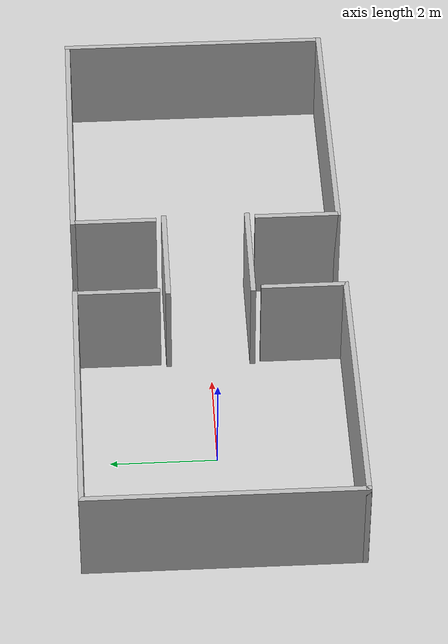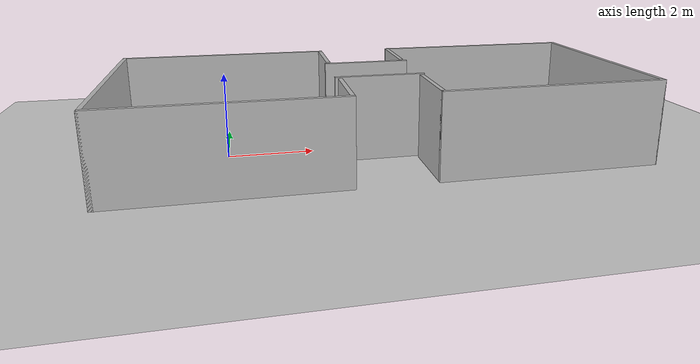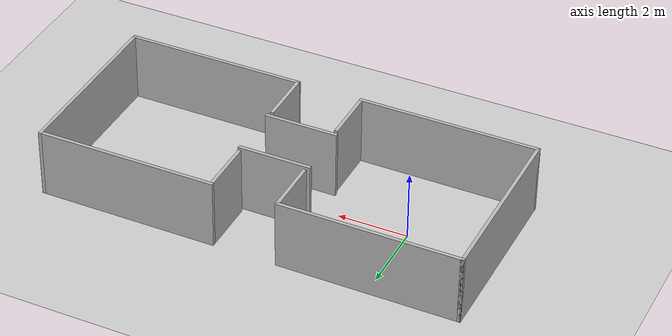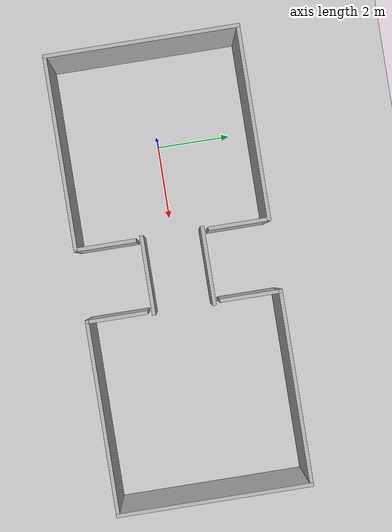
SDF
<?xml version="1.0" ?>
<sdf version="1.8">
  <world name="two_rooms_hallway">
    <physics name="1ms" type="ignored">
      <max_step_size>0.001</max_step_size>
      <real_time_factor>1.0</real_time_factor>
    </physics>
    <plugin filename="gz-sim-physics-system" name="gz::sim::systems::Physics"></plugin>
    <plugin filename="gz-sim-user-commands-system" name="gz::sim::systems::UserCommands"></plugin>
    <plugin filename="gz-sim-scene-broadcaster-system" name="gz::sim::systems::SceneBroadcaster"></plugin>
    <plugin filename="gz-sim-sensors-system" name="gz::sim::systems::Sensors">
        <render_engine>ogre2</render_engine>
    </plugin>

    <!-- Sun Light -->
    <light type="directional" name="sun">
      <cast_shadows>true</cast_shadows>
      <pose>0 0 10 0 0 0</pose>
      <diffuse>0.8 0.8 0.8 1</diffuse>
      <specular>0.2 0.2 0.2 1</specular>
      <direction>-0.5 0.1 -0.9</direction>
    </light>

    <!-- Ground Plane -->
    <model name="ground_plane">
      <static>true</static>
      <link name="link">
        <collision name="collision">
          <geometry><plane><normal>0 0 1</normal><size>100 100</size></plane></geometry>
        </collision>
        <visual name="visual">
          <geometry><plane><normal>0 0 1</normal><size>100 100</size></plane></geometry>
          <material><ambient>0.8 0.8 0.8 1</ambient><diffuse>0.8 0.8 0.8 1</diffuse></material>
        </visual>
      </link>
    </model>

    <!-- WALL DEFINITIONS (0.1m thick, 2m high) -->

    <!-- ROOM 1 (5x5m, Centered at 0,0) -->
    <!-- West Wall -->
    <model name="r1_wall_west">
      <static>true</static>
      <pose>-2.55 0 1 0 0 0</pose>
      <link name="link">
        <visual name="v"><geometry><box><size>0.1 5.2 2</size></box></geometry></visual>
        <collision name="c"><geometry><box><size>0.1 5.2 2</size></box></geometry></collision>
      </link>
    </model>
    <!-- North Wall -->
    <model name="r1_wall_north">
      <static>true</static>
      <pose>0 2.55 1 0 0 0</pose>
      <link name="link">
        <visual name="v"><geometry><box><size>5.2 0.1 2</size></box></geometry></visual>
        <collision name="c"><geometry><box><size>5.2 0.1 2</size></box></geometry></collision>
      </link>
    </model>
    <!-- South Wall -->
    <model name="r1_wall_south">
      <static>true</static>
      <pose>0 -2.55 1 0 0 0</pose>
      <link name="link">
        <visual name="v"><geometry><box><size>5.2 0.1 2</size></box></geometry></visual>
        <collision name="c"><geometry><box><size>5.2 0.1 2</size></box></geometry></collision>
      </link>
    </model>
    <!-- East Wall (Partial for Hallway connection - two segments) -->
    <!-- Top Segment -->
    <model name="r1_wall_east_top">
      <static>true</static>
      <pose>2.55 1.75 1 0 0 0</pose> <!-- 2.5 + 0.05 (half thickness), Y at (1.0 + 1.5/2) -->
      <link name="link">
        <visual name="v"><geometry><box><size>0.1 1.6 2</size></box></geometry></visual> <!-- (2.5-1) * 2 - 0.1 = 1.5 for the hole -->
        <collision name="c"><geometry><box><size>0.1 1.6 2</size></box></geometry></collision>
      </link>
    </model>
    <!-- Bottom Segment -->
    <model name="r1_wall_east_bottom">
      <static>true</static>
      <pose>2.55 -1.75 1 0 0 0</pose> <!-- Same logic -->
      <link name="link">
        <visual name="v"><geometry><box><size>0.1 1.6 2</size></box></geometry></visual>
        <collision name="c"><geometry><box><size>0.1 1.6 2</size></box></geometry></collision>
      </link>
    </model>

    <!-- HALLWAY (2m long x 1.5m wide, along X-axis, centered at 3.5,0) -->
    <!-- North Wall -->
    <model name="hall_wall_north">
      <static>true</static>
      <pose>3.5 0.8 1 0 0 0</pose> <!-- Y = 0.75 + 0.05 (half thickness) -->
      <link name="link">
        <visual name="v"><geometry><box><size>2.1 0.1 2</size></box></geometry></visual>
        <collision name="c"><geometry><box><size>2.1 0.1 2</size></box></geometry></collision>
      </link>
    </model>
    <!-- South Wall -->
    <model name="hall_wall_south">
      <static>true</static>
      <pose>3.5 -0.8 1 0 0 0</pose>
      <link name="link">
        <visual name="v"><geometry><box><size>2.1 0.1 2</size></box></geometry></visual>
        <collision name="c"><geometry><box><size>2.1 0.1 2</size></box></geometry></collision>
      </link>
    </model>

    <!-- ROOM 2 (5x5m, Centered at 7,0) -->
    <!-- West Wall (Partial for Hallway connection - two segments) -->
    <!-- Top Segment -->
    <model name="r2_wall_west_top">
      <static>true</static>
      <pose>4.45 1.75 1 0 0 0</pose>
      <link name="link">
        <visual name="v"><geometry><box><size>0.1 1.6 2</size></box></geometry></visual>
        <collision name="c"><geometry><box><size>0.1 1.6 2</size></box></geometry></collision>
      </link>
    </model>
    <!-- Bottom Segment -->
    <model name="r2_wall_west_bottom">
      <static>true</static>
      <pose>4.45 -1.75 1 0 0 0</pose>
      <link name="link">
        <visual name="v"><geometry><box><size>0.1 1.6 2</size></box></geometry></visual>
        <collision name="c"><geometry><box><size>0.1 1.6 2</size></box></geometry></collision>
      </link>
    </model>
    <!-- East Wall -->
    <model name="r2_wall_east">
      <static>true</static>
      <pose>9.55 0 1 0 0 0</pose>
      <link name="link">
        <visual name="v"><geometry><box><size>0.1 5.2 2</size></box></geometry></visual>
        <collision name="c"><geometry><box><size>0.1 5.2 2</size></box></geometry></collision>
      </link>
    </model>
    <!-- North Wall -->
    <model name="r2_wall_north">
      <static>true</static>
      <pose>7 2.55 1 0 0 0</pose>
      <link name="link">
        <visual name="v"><geometry><box><size>5.2 0.1 2</size></box></geometry></visual>
        <collision name="c"><geometry><box><size>5.2 0.1 2</size></box></geometry></collision>
      </link>
    </model>
    <!-- South Wall -->
    <model name="r2_wall_south">
      <static>true</static>
      <pose>7 -2.55 1 0 0 0</pose>
      <link name="link">
        <visual name="v"><geometry><box><size>5.2 0.1 2</size></box></geometry></visual>
        <collision name="c"><geometry><box><size>5.2 0.1 2</size></box></geometry></collision>
      </link>
    </model>

  </world>
</sdf>
